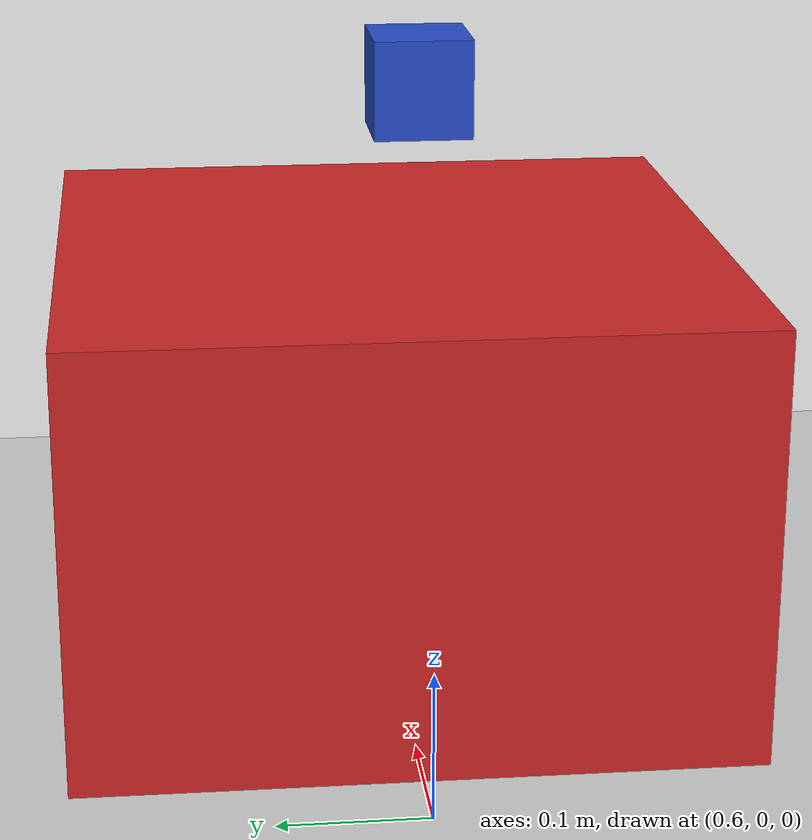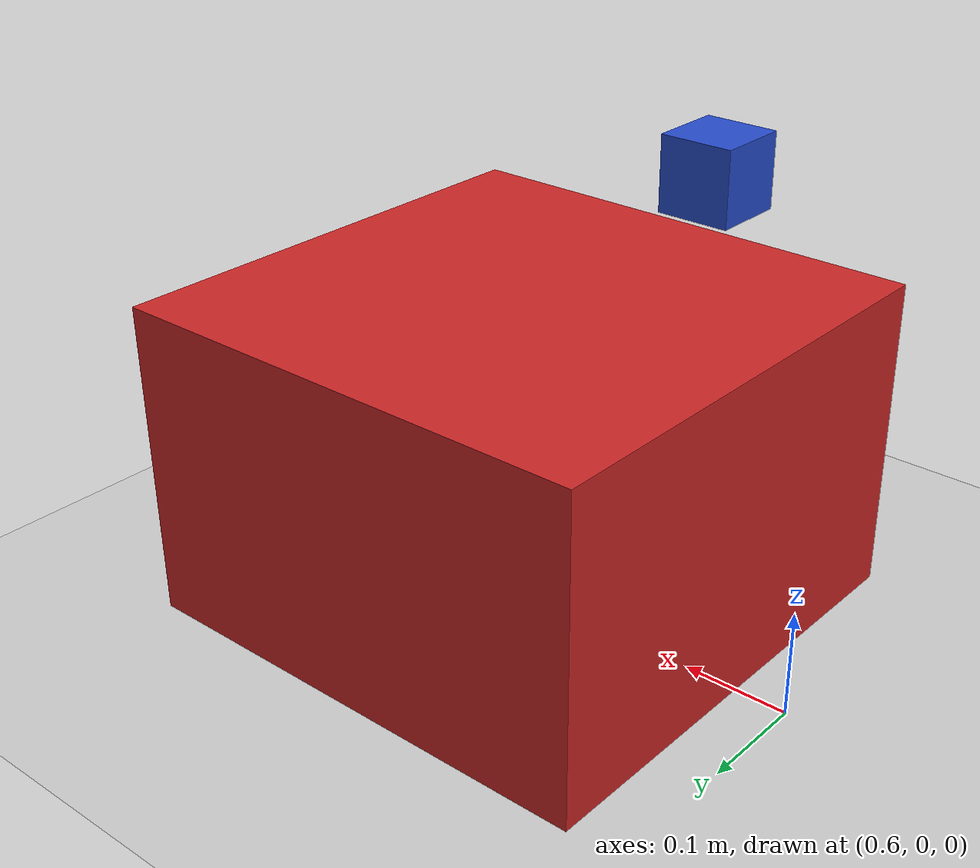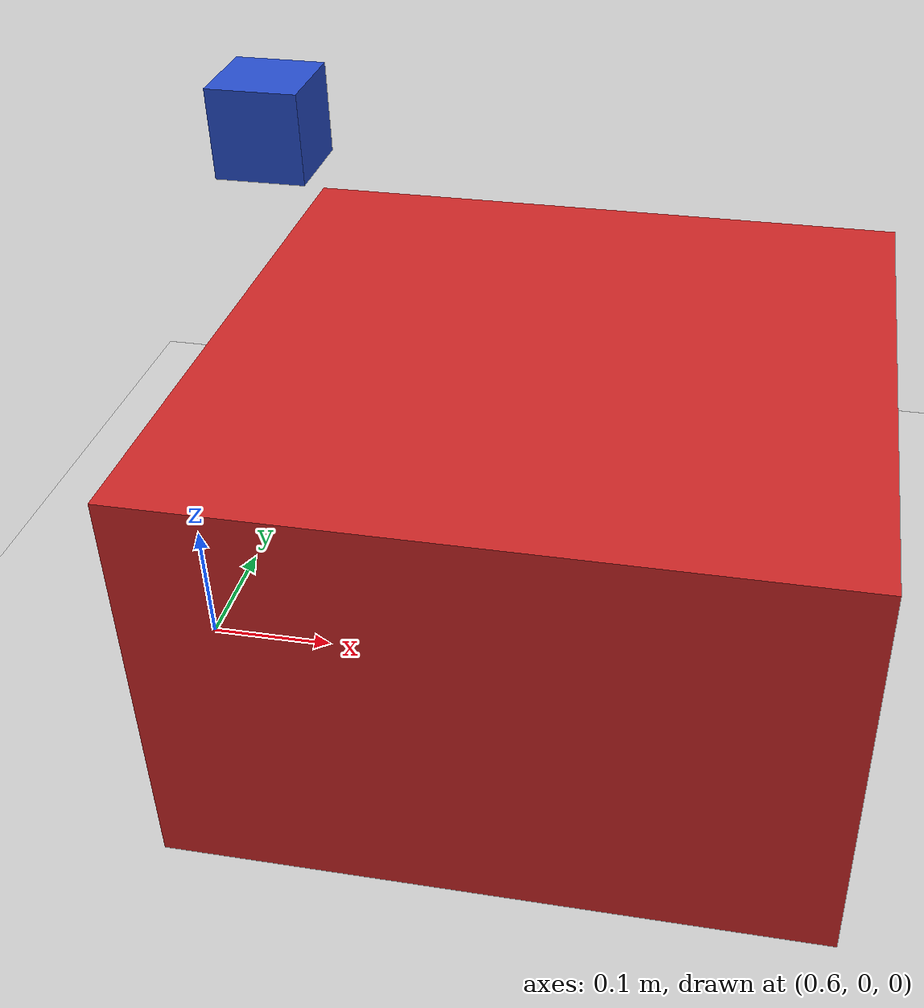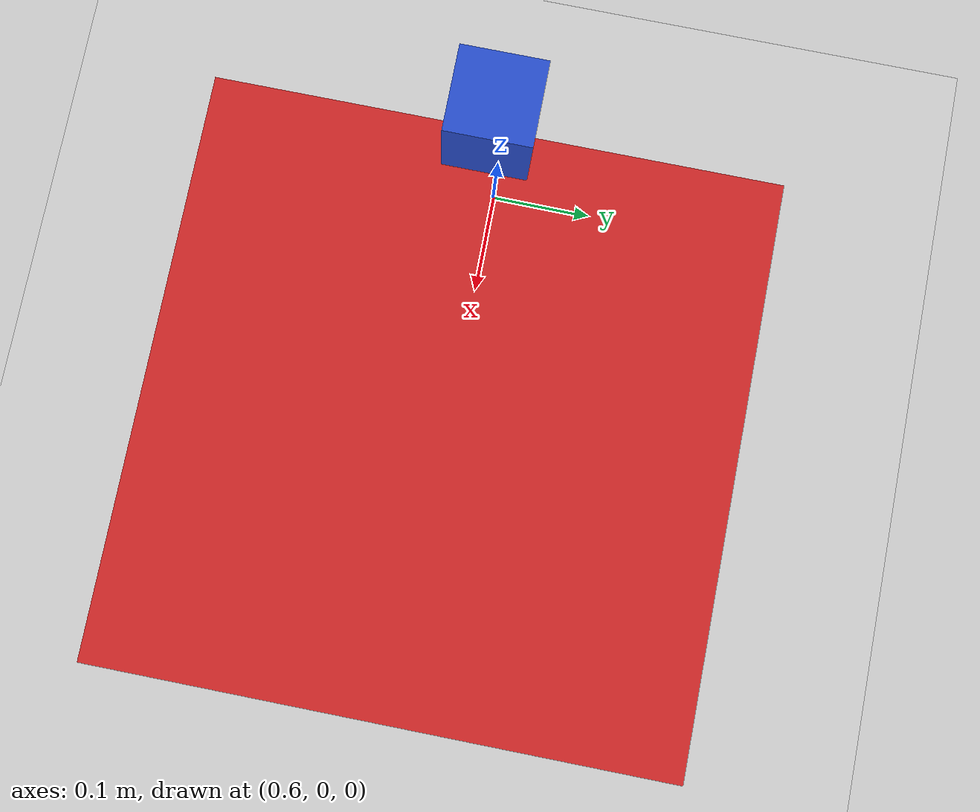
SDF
<sdf version="1.5">

<world name="default">

     <include>
      <uri>model://ground_plane</uri>
    </include>

    <include>
      <uri>model://demo_cube</uri>
      <name>demo_cube</name>
      <pose>0.70 0.0 0.45 0 0 0 0</pose>
    </include>

    <include>
      <uri>model://demo_table</uri>
      <name>demo_table1</name>
      <pose>0.885 0 0.15 0 0 0 0</pose>
    </include>

    <light name='user_point_light_0' type='point'>
      <pose frame=''>0 0 1.8 0 0 0</pose>
      <diffuse>0.7 0.7 0.7 1</diffuse>
      <specular>0.1 0.1 0.1 1</specular>
      <attenuation>
        <range>10</range>
        <constant>0.5</constant>
        <linear>0.01</linear>
        <quadratic>0.001</quadratic>
      </attenuation>
      <cast_shadows>0</cast_shadows>
      <direction>0 0 -1</direction>
    </light>

</world>
</sdf>

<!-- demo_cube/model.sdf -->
<sdf version='1.6'>
  <model name="demo_cube">
      <static>0</static>
      <link name='link'>
        <inertial>
          <mass>0.25</mass>
          <inertia>
            <ixx>0.001</ixx>
            <ixy>0.000000</ixy>
            <ixz>0.000000</ixz>
            <iyy>0.001</iyy>
            <iyz>0.000000</iyz>
            <izz>0.001</izz>
          </inertia>
        </inertial>
        <collision name='collision'>
          <geometry>
            <box>
              <size>0.060 0.060 0.060</size>
            </box>
          </geometry>
          <surface>
            <friction>
              <ode>
                <mu>30.0</mu>
                <mu2>30.0</mu2>
              </ode>
            </friction>
            <contact>
              <ode>
                <kp>1000000.0</kp>
                <kd>100.0</kd>
                <max_vel>1.0</max_vel>
                <min_depth>0.002</min_depth>
              </ode>
            </contact>
          </surface>
        </collision>
        <visual name='visual'>
          <geometry>
            <box>
              <size>0.060 0.060 0.060</size>
            </box>
          </geometry>
          <material>
            <script>
              <uri>file://media/materials/scripts/gazebo.material</uri>
              <name>Gazebo/Blue</name>
            </script>
          </material>
        </visual>
        <velocity_decay>
          <linear>0.000000</linear>
          <angular>0.000000</angular>
        </velocity_decay>
        <self_collide>0</self_collide>
        <kinematic>0</kinematic>
        <gravity>1</gravity>
      </link>
  </model>
</sdf>

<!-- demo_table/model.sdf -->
<sdf version='1.4'>
  <model name="demo_table">
      <static>1</static>
      <link name='link_demo_table'>
        <inertial>
          <mass>0.25</mass>
          <inertia>
            <ixx>0.001</ixx>
            <ixy>0.000000</ixy>
            <ixz>0.000000</ixz>
            <iyy>0.001</iyy>
            <iyz>0.000000</iyz>
            <izz>0.001</izz>
          </inertia>
        </inertial>
        <collision name='collision_demo_table'>
          <geometry>
            <box>
              <size>0.47 0.46 0.3</size>
            </box>
          </geometry>
          <surface>
            <friction>
              <ode>
                <mu>30.0</mu>
                <mu2>30.0</mu2>
              </ode>
            </friction>
            <contact>
              <ode>
                <kp>1000000.0</kp>
                <kd>100.0</kd>
                <max_vel>1.0</max_vel>
                <min_depth>0.002</min_depth>
              </ode>
            </contact>
          </surface>
        </collision>
        <visual name='visual_demo_table'>
          <geometry>
            <box>
              <size>0.47 0.46 0.3</size>
            </box>
          </geometry>
          <material>
            <script>
              <uri>file://media/materials/scripts/gazebo.material</uri>
              <name>Gazebo/Red</name>
            </script>
          </material>
        </visual>
        <velocity_decay>
          <linear>0.000000</linear>
          <angular>0.000000</angular>
        </velocity_decay>
        <self_collide>0</self_collide>
        <kinematic>0</kinematic>
        <gravity>1</gravity>
      </link>
  </model>
</sdf>
